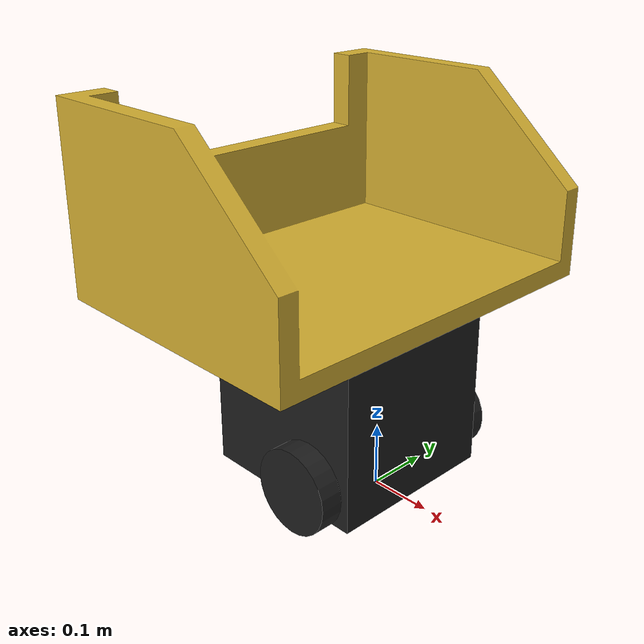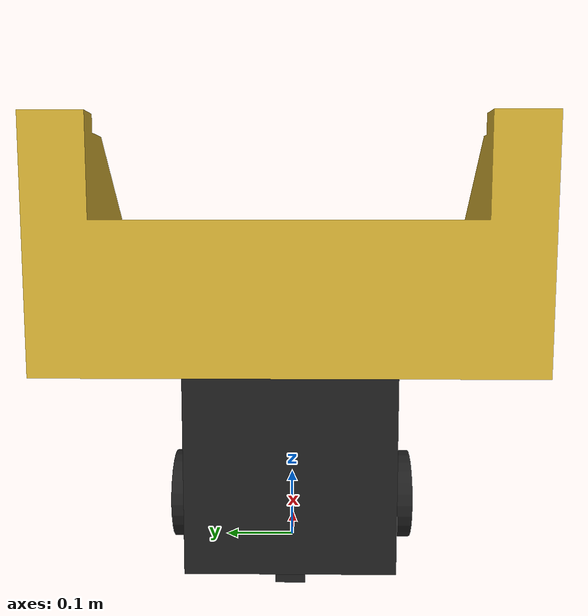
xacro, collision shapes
<?xml version="1.0" ?>
<robot name="turtlebot3_burger" xmlns:xacro="http://ros.org/wiki/xacro">
  <xacro:include filename="$(find ssabot)/urdf/common_properties.xacro"/>
  <xacro:include filename="$(find ssabot)/urdf/turtlebot3_burger.gazebo.xacro"/>

  <link name="base_footprint"/>

  <joint name="base_joint" type="fixed">
    <parent link="base_footprint"/>
    <child link="base_link"/>
    <origin xyz="0.0 0.0 0.020" rpy="0 0 0"/>
  </joint>

  <link name="base_link">
    <visual>
      <origin xyz="-0.064 0 0.0" rpy="0 0 0"/>
      <geometry>
        <mesh filename="package://ssabot/meshes/bases/burger_base.stl" scale="0.002 0.002 0.002"/>
      </geometry>
      <material name="light_black"/>
    </visual>

    <collision>
      <origin xyz="-0.064 0 0.140" rpy="0 0 0"/>
      <geometry>
        <box size="0.280 0.280 0.286"/>
      </geometry>
    </collision>

    <inertial>
      <origin xyz="0 0 0" rpy="0 0 0"/>
      <mass value="8.2573504e-01"/>
      <inertia ixx="2.2124416e-03" ixy="-1.2294101e-05" ixz="3.4938785e-05"
               iyy="2.1193702e-03" iyz="-5.0120904e-06"
               izz="2.0064271e-03" />
    </inertial>
  </link>

  <joint name="wheel_left_joint" type="continuous">
    <parent link="base_link"/>
    <child link="wheel_left_link"/>
    <origin xyz="0.0 0.16 0.046" rpy="-1.57 0 0"/>
    <axis xyz="0 0 1"/>
  </joint>

  <link name="wheel_left_link">
    <visual>
      <origin xyz="0 0 0" rpy="1.57 0 0"/>
      <geometry>
        <mesh filename="package://ssabot/meshes/wheels/left_tire.stl" scale="0.002 0.002 0.002"/>
      </geometry>
      <material name="dark"/>
    </visual>

    <collision>
      <origin xyz="0 0 0" rpy="0 0 0"/>
      <geometry>
        <cylinder length="0.036" radius="0.066"/>
      </geometry>
    </collision>

    <inertial>
      <origin xyz="0 0 0" />
      <mass value="5.6398940e-02" />
      <inertia ixx="2.1175580e-05" ixy="-8.2369783e-11" ixz="-10.9381719e-09"
               iyy="2.1192413e-05" iyz="-2.4400107e-11"
               izz="4.0712558e-05" />
    </inertial>
  </link>

  <joint name="wheel_right_joint" type="continuous">
    <parent link="base_link"/>
    <child link="wheel_right_link"/>
    <origin xyz="0.0 -0.160 0.046" rpy="-1.57 0 0"/>
    <axis xyz="0 0 1"/>
  </joint>

  <link name="wheel_right_link">
    <visual>
      <origin xyz="0 0 0" rpy="1.57 0 0"/>
      <geometry>
        <mesh filename="package://ssabot/meshes/wheels/right_tire.stl" scale="0.002 0.002 0.002"/>
      </geometry>
      <material name="dark"/>
    </visual>

    <collision>
      <origin xyz="0 0 0" rpy="0 0 0"/>
      <geometry>
        <cylinder length="0.036" radius="0.066"/>
      </geometry>
    </collision>

    <inertial>
      <origin xyz="0 0 0" />
      <mass value="5.6398940e-02" />
      <inertia ixx="2.1175580e-05" ixy="-8.2369783e-11" ixz="-10.9381719e-09"
               iyy="2.1192413e-05" iyz="-2.4400107e-11"
               izz="4.0712558e-05" />
      </inertial>
  </link>

  <joint name="caster_back_joint" type="fixed">
    <parent link="base_link"/>
    <child link="caster_back_link"/>
    <origin xyz="-0.162 0 -0.008" rpy="-1.57 0 0"/>
  </joint>

  <link name="caster_back_link">
    <collision>
      <origin xyz="0 0.002 0" rpy="0 0 0"/>
      <geometry>
        <box size="0.060 0.018 0.040"/>
      </geometry>
    </collision>

    <inertial>
      <origin xyz="0 0 0" />
      <mass value="0.010" />
      <inertia ixx="0.002" ixy="0.0" ixz="0.0"
               iyy="0.002" iyz="0.0"
               izz="0.002" />
    </inertial>
  </link>

  <joint name="imu_joint" type="fixed">
    <parent link="base_link"/>
    <child link="imu_link"/>
    <origin xyz="-0.032 0 0.068" rpy="0 0 0"/>
  </joint>

  <link name="imu_link"/>

  <joint name="dump_joint" type="revolute">
    <parent link="base_link"/>
    <child link="dumper_bin"/>
    <origin xyz="0.2 0 0.28" rpy="0 0 0"/>
    <axis xyz="0 1 0"/>
    <limit effort="1" velocity="1" lower="0" upper="0.6"/>
  </joint>

  <link name="dumper_bin">

    <collision name='collision'>
      <origin xyz="-0.3 0 0" rpy=" 0 0 1.57079"/>
        <geometry>
          <mesh filename="package://ssabot/meshes/meshes/dumper_bin.dae" scale="0.015 0.015 0.015"/>
        </geometry>
    </collision>
    <visual name='dump_box_visual'>
      <origin xyz=" -0.3 0 0.0" rpy="0 0 1.57079"/>
        <geometry>
          <mesh filename="package://ssabot/meshes/meshes/dumper_bin.dae" scale="0.015 0.015 0.015"/>
        </geometry>
    </visual>

    <inertial>
      <mass value="0.001" />
      <origin xyz="0 0 0" />
      <inertia ixx="0.001" ixy="0.0" ixz="0.0"
               iyy="0.001" iyz="0.0"
               izz="0.001" />
    </inertial>
  </link>

</robot>
